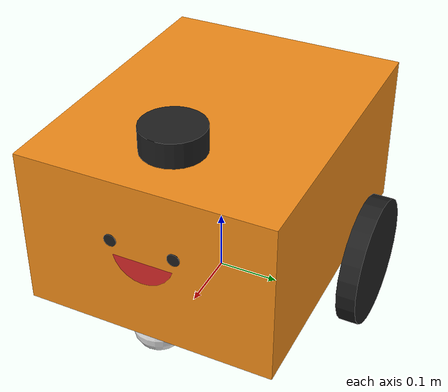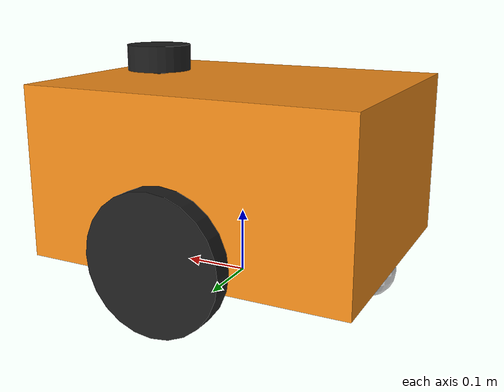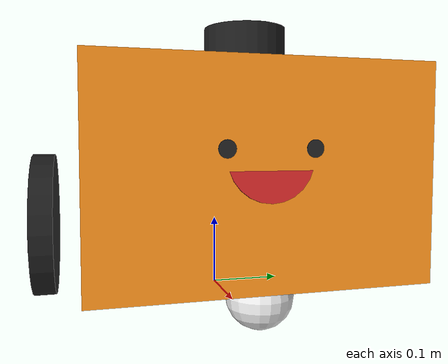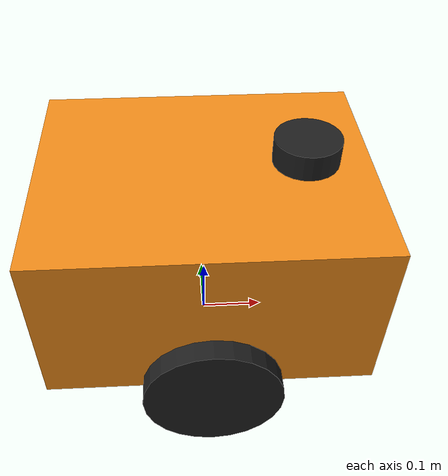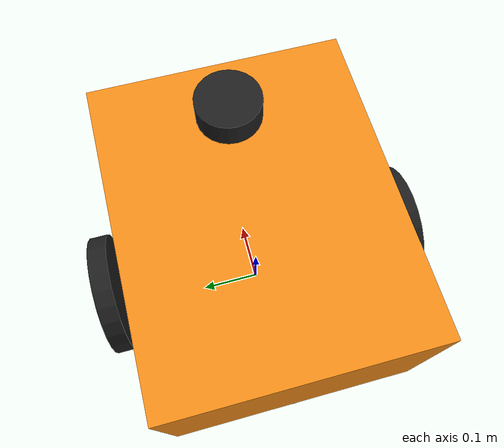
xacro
<?xml version="1.0"?>
<!-- Basic differential drive mobile base -->
<robot xmlns:xacro="http://www.ros.org/wiki/xacro" name="diffdrive_robot">
  <xacro:arg name="prefix" default="" />

  <xacro:include filename="$(find gazebo_control)/urdf/diffbot_description.urdf.xacro" />

  <xacro:include filename="$(find gazebo_control)/urdf/gazebo_control.xacro" />

  <!-- Import Rviz colors -->
  <xacro:include filename="$(find gazebo_control)/urdf/diffbot.materials.xacro" />

  <!-- Import diffbot ros2_control description -->
  <xacro:include filename="$(find gazebo_control)/ros2_control/diffbot.ros2_control.xacro" />

  <xacro:diffbot prefix="$(arg prefix)" />

  <xacro:diffbot_ros2_control
    name="DiffBot" prefix="$(arg prefix)" />

</robot>

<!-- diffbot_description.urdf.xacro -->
<robot xmlns:xacro="http://www.ros.org/wiki/xacro">

  <xacro:macro name="diffbot" params="prefix">
    <xacro:include filename="inertial_macros.xacro"/>

    <!-- Constants for robot dimensions -->
    <xacro:property name="PI" value="3.1415926535897931"/>
    <xacro:property name="base_mass" value="0.3"/>
    <xacro:property name="base_width" value="0.5"/>
    <xacro:property name="base_length" value="0.4"/>
    <xacro:property name="base_height" value="0.26"/>
    <xacro:property name="wheel_mass" value="0.3"/>
    <xacro:property name="wheel_len" value="0.03"/>
    <xacro:property name="wheel_radius" value="0.1"/>
    <xacro:property name="caster_wheel_mass" value="0.1"/>
    <xacro:property name="caster_wheel_radius" value="0.04"/>
    <xacro:property name="z_offset" value="-${base_height/2}"/>

    <!-- Base Link -->
    <link name="${prefix}base_link">
      <collision>
        <origin xyz="0 0 0.17" rpy="0 0 1.57"/>
        <geometry>
          <box size="${base_width} ${base_length} ${base_height}"/>
        </geometry>
      </collision>

      <visual>
        <origin xyz="0 0 0.18" rpy="0 0 0"/>
        <geometry>
          <box size="${base_width} ${base_length} ${base_height}"/>
        </geometry>
        <material name="orange"/>
      </visual>

      <inertial>
        <origin xyz="0 0 0" rpy="0 0 0"/>
        <mass value="${base_mass}"/>
        <inertia
          ixx="${base_mass / 12.0 * (base_length*base_length + base_height*base_height)}" ixy="0.0" ixz="0.0"
          iyy="${base_mass / 12.0 * (base_height*base_height + base_width*base_width)}" iyz="0.0"
          izz="${base_mass / 12.0 * (base_width*base_width + base_length*base_length)}"/>
      </inertial>
    </link>

    <!-- Left Wheel Joint and Link -->
    <joint name="${prefix}left_wheel_joint" type="continuous">
      <parent link="${prefix}base_link"/>
      <child link="${prefix}left_wheel"/>
      <origin xyz="0 -${base_width/2} 0.1" rpy="0 0 0"/>
      <axis xyz="0 1 0"/>
      <dynamics damping="0.2"/>
    </joint>

    <link name="${prefix}left_wheel">
      <collision>
        <origin xyz="0 0.296 0.1" rpy="${PI/2} 0 0"/>
        <geometry>
          <cylinder length="${wheel_len}" radius="${wheel_radius}"/>
        </geometry>
      </collision>

      <visual>
        <origin xyz="0 0 0" rpy="${PI/2} 0 0"/>
        <geometry>
          <cylinder length="${wheel_len}" radius="${wheel_radius}"/>
        </geometry>
        <material name="black"/>
      </visual>

      <inertial>
        <origin xyz="0 0 0" rpy="${PI/2} 0 0"/>
        <mass value="${wheel_mass}"/>
        <inertia
          ixx="${wheel_mass / 12.0 * (3*wheel_radius + wheel_len*wheel_len)}" ixy="0.0" ixz="0.0"
          iyy="${wheel_mass / 12.0 * wheel_radius*wheel_radius}" iyz="0.0"
          izz="${wheel_mass / 12.0 * wheel_radius*wheel_radius}"/>
      </inertial>
    </link>

    <gazebo reference="left_wheel">
      <material>Gazebo/Blue</material>
    </gazebo>

    <!-- Right Wheel Joint and Link -->
    <joint name="${prefix}right_wheel_joint" type="continuous">
      <parent link="${prefix}base_link"/>
      <child link="${prefix}right_wheel"/>
      <origin xyz="0 ${base_width/2} 0.1" rpy="0 0 0"/>
      <axis xyz="0 1 0"/>
      <dynamics damping="0.2"/>
    </joint>

    <link name="${prefix}right_wheel">
      <collision>
        <origin xyz="0 -0.296 0.1" rpy="${PI/2} 0 0"/>
        <geometry>
          <cylinder length="${wheel_len}" radius="${wheel_radius}"/>
        </geometry>
      </collision>

      <visual>
        <origin xyz="0 0 0" rpy="${PI/2} 0 0"/>
        <geometry>
          <cylinder length="${wheel_len}" radius="${wheel_radius}"/>
        </geometry>
        <material name="black"/>
      </visual>

      <inertial>
        <origin xyz="0 0 0" rpy="${PI/2} 0 0"/>
        <mass value="${wheel_mass}"/>
        <inertia
          ixx="${wheel_mass / 12.0 * (3*wheel_radius + wheel_len*wheel_len)}" ixy="0.0" ixz="0.0"
          iyy="${wheel_mass / 12.0 * wheel_radius*wheel_radius}" iyz="0.0"
          izz="${wheel_mass / 12.0 * wheel_radius*wheel_radius}"/>
      </inertial>
    </link>

    <gazebo reference="right_wheel">
      <material>Gazebo/Blue</material>
    </gazebo>

    <!-- Caster Wheels -->
    <joint name="${prefix}caster_frontal_wheel_joint" type="fixed">
      <parent link="${prefix}base_link"/>
      <child link="${prefix}caster_frontal_wheel"/>
      <origin xyz="${base_width/2 - caster_wheel_radius} 0 0.04" rpy="0 0 0"/>
    </joint>

    <link name="${prefix}caster_frontal_wheel">
      <collision>
        <origin xyz="0 0 0" rpy="0 0 0"/>
        <geometry>
          <sphere radius="${caster_wheel_radius}"/>
        </geometry>
      </collision>

      <visual>
        <origin xyz="0 0 0" rpy="0 0 0"/>
        <geometry>
          <sphere radius="${caster_wheel_radius}"/>
        </geometry>
        <material name="white"/>
      </visual>

      <inertial>
        <origin xyz="0 0 0" rpy="0 0 0"/>
        <mass value="${caster_wheel_mass}"/>
        <inertia
          ixx="${caster_wheel_mass * 0.4 * (caster_wheel_radius * caster_wheel_radius)}" ixy="0.0" ixz="0.0"
          iyy="${caster_wheel_mass * 0.4 * (caster_wheel_radius * caster_wheel_radius)}" iyz="0.0"
          izz="${caster_wheel_mass * 0.4 * (caster_wheel_radius * caster_wheel_radius)}"/>
      </inertial>
    </link>

    <joint name="${prefix}caster_rear_wheel_joint" type="fixed">
      <parent link="${prefix}base_link"/>
      <child link="${prefix}caster_rear_wheel"/>
      <origin xyz="${-base_width/2 + caster_wheel_radius} 0 0.04" rpy="0 0 0"/>
    </joint>

    <link name="${prefix}caster_rear_wheel">
      <collision>
        <origin xyz="0 0 0" rpy="0 0 0"/>
        <geometry>
          <sphere radius="${caster_wheel_radius}"/>
        </geometry>
      </collision>

      <visual>
        <origin xyz="0 0 0" rpy="0 0 0"/>
        <geometry>
          <sphere radius="${caster_wheel_radius}"/>
        </geometry>
        <material name="white"/>
      </visual>

      <inertial>
        <origin xyz="0 0 0" rpy="0 0 0"/>
        <mass value="${caster_wheel_mass}"/>
        <inertia
          ixx="${caster_wheel_mass * 0.4 * (caster_wheel_radius * caster_wheel_radius)}" ixy="0.0" ixz="0.0"
          iyy="${caster_wheel_mass * 0.4 * (caster_wheel_radius * caster_wheel_radius)}" iyz="0.0"
          izz="${caster_wheel_mass * 0.4 * (caster_wheel_radius * caster_wheel_radius)}"/>
      </inertial>
    </link>

    <gazebo reference="caster_frontal_wheel">
      <material>Gazebo/White</material>
      <mu1 value="0.001"/>
      <mu2 value="0.001"/>
    </gazebo>

    <gazebo reference="caster_rear_wheel">
      <material>Gazebo/White</material>
      <mu1 value="0.001"/>
      <mu2 value="0.001"/>
    </gazebo>

    <!-- Face Link -->
    <joint name="face_joint" type="fixed">
      <parent link="${prefix}base_link"/>
      <child link="face_link"/>
      <origin xyz="${base_width/2} 0 ${base_width/2.5}" rpy="0 0 0"/>
    </joint>

    <link name="face_link">
      <visual>
        <origin xyz="0 0.05 0.01" rpy="0 ${pi/2} 0"/>
        <geometry>
          <cylinder radius="0.01" length="0.002"/>
        </geometry>
        <material name="black"/>
      </visual>

      <visual>
        <origin xyz="0 -0.05 0.01" rpy="0 ${pi/2} 0"/>
        <geometry>
          <cylinder radius="0.01" length="0.002"/>
        </geometry>
        <material name="black"/>
      </visual>

      <visual>
        <origin xyz="-0.011 0 -0.00" rpy="0 ${1.5} 0"/>
        <geometry>
          <cylinder radius="0.05" length="0.02"/>
        </geometry>
        <material name="red"/>
      </visual>
    </link>

    <gazebo reference="face_link">
      <material>Gazebo/Black</material>
    </gazebo>

    <!-- Laser Link -->
    <joint name="laser_joint" type="fixed">
      <parent link="${prefix}base_link"/>
      <child link="laser_frame"/>
      <origin xyz="0.15 0 0.336" rpy="0 0 0"/>
    </joint>

    <link name="laser_frame">
      <visual>
        <geometry>
          <cylinder radius="0.05" length="0.04"/>
        </geometry>
        <material name="black"/>
      </visual>
      <visual>
        <origin xyz="0 0 -0.05"/>
        <geometry>
          <cylinder radius="0.01" length="0.1"/>
        </geometry>
        <material name="black"/>
      </visual>
      <collision>
        <geometry>
          <cylinder radius="0.05" length="0.04"/>
        </geometry>
      </collision>
      <xacro:inertial_cylinder mass="0.1" length="0.04" radius="0.05">
        <origin xyz="0 0 0" rpy="0 0 0"/>
      </xacro:inertial_cylinder>
    </link>
  </xacro:macro>
</robot>
